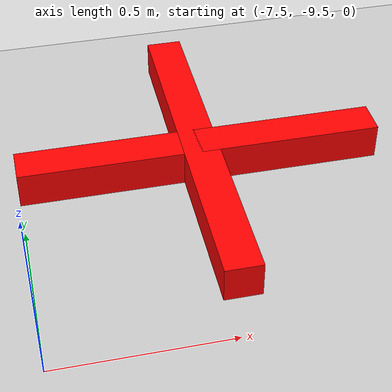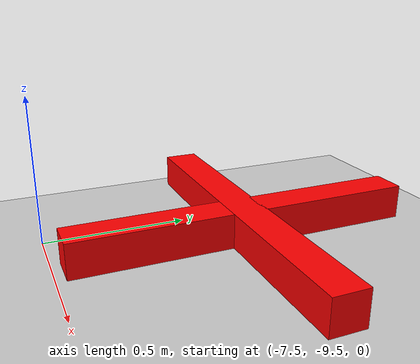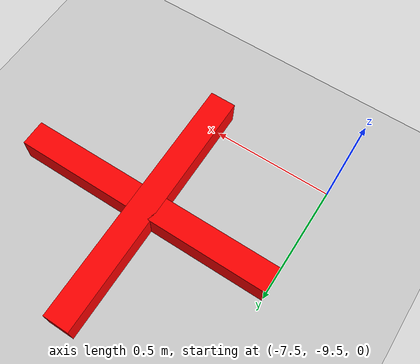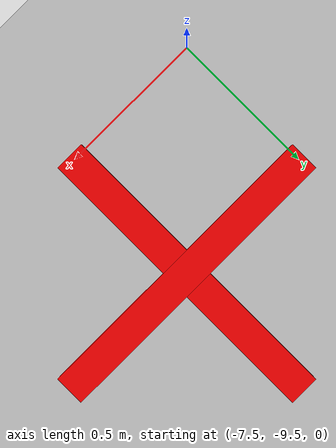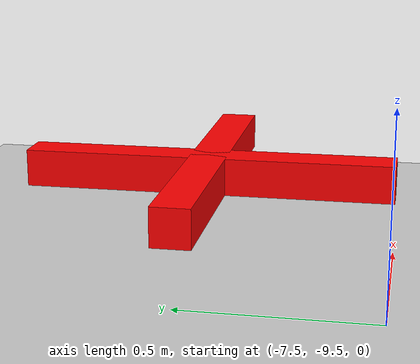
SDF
<?xml version="1.0" ?>
<sdf version="1.6">
  <world name="empty_world">

    <!-- 🌞 SUN -->
    <include>
      <uri>model://sun</uri>
    </include>

    <!-- 🌍 GROUND -->
    <include>
      <uri>model://ground_plane</uri>
    </include>

    <!-- 🎯 GOAL -->
    <model name="goal_marker">
      <static>true</static>
      <pose>-7 -9 0.2 0 0 0</pose>

      <link name="link">

        <visual name="h">
          <geometry>
            <box><size>1 0.1 0.1</size></box>
          </geometry>
          <material>
            <ambient>1 0 0 1</ambient>
          </material>
        </visual>

        <visual name="v">
          <geometry>
            <box><size>0.1 1 0.1</size></box>
          </geometry>
          <material>
            <ambient>1 0 0 1</ambient>
          </material>
        </visual>

        <!-- collision minimale -->
        <collision name="collision">
          <geometry>
            <box><size>0.01 0.01 0.01</size></box>
          </geometry>
        </collision>

      </link>
    </model>

  </world>
</sdf>
